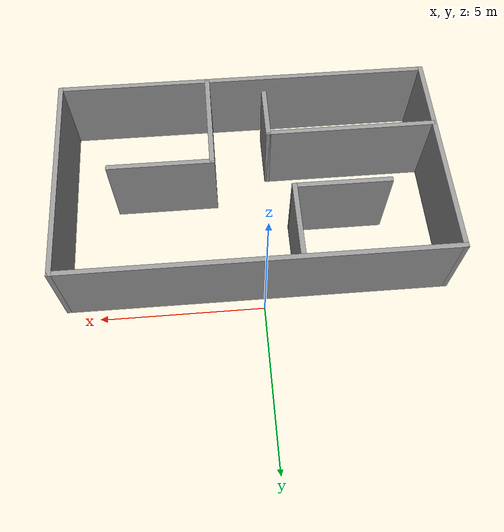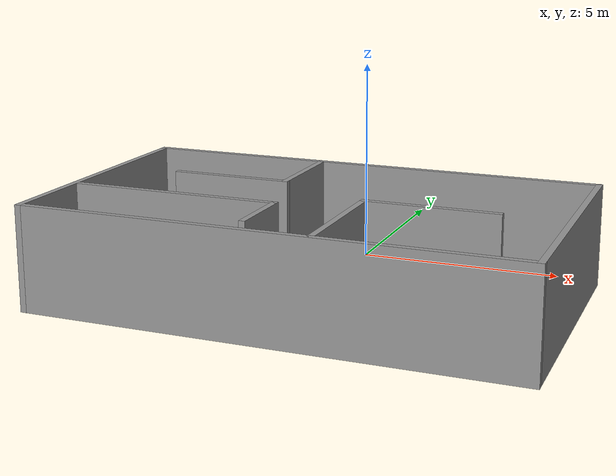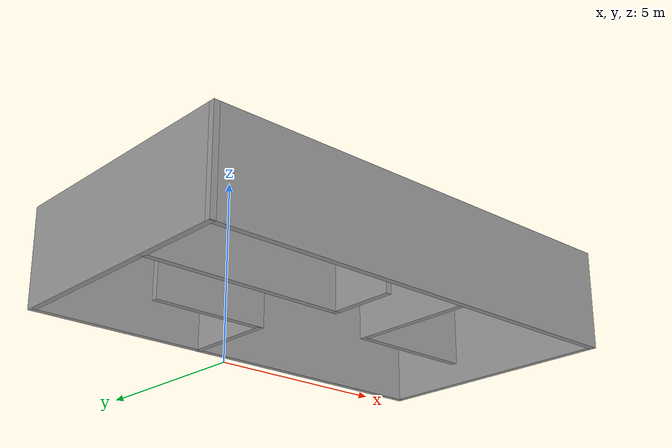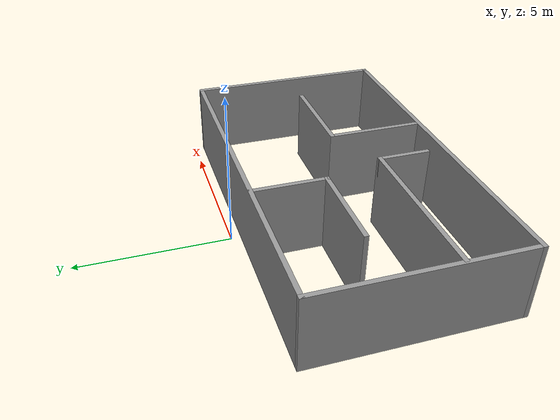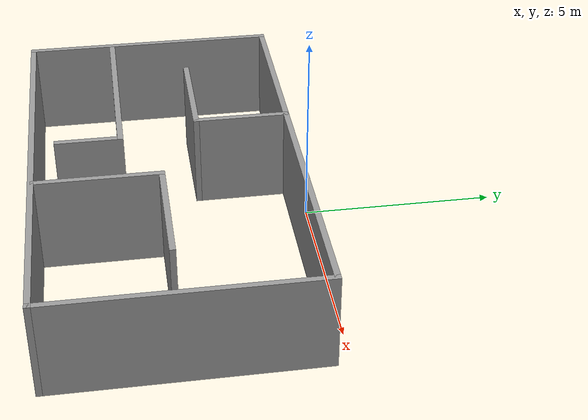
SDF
<?xml version='1.0'?>
<sdf version='1.7'>
  <model name='room'>
    <pose>0.15754 -3.53277 0 0 -0 0</pose>
    <link name='Wall_11'>
      <collision name='Wall_11_Collision'>
        <geometry>
          <box>
            <size>2.5 0.15 2.5</size>
          </box>
        </geometry>
        <pose>0 0 1.25 0 -0 0</pose>
      </collision>
      <visual name='Wall_11_Visual'>
        <pose>0 0 1.25 0 -0 0</pose>
        <geometry>
          <box>
            <size>2.5 0.15 2.5</size>
          </box>
        </geometry>
        <material>
          <script>
            <uri>file://media/materials/scripts/gazebo.material</uri>
            <name>Gazebo/Grey</name>
          </script>
          <ambient>1 1 1 1</ambient>
        </material>
        <meta>
          <layer>0</layer>
        </meta>
      </visual>
      <pose>-1.23422 1.94712 0 0 -0 -1.5708</pose>
    </link>
    <link name='Wall_12'>
      <collision name='Wall_12_Collision'>
        <geometry>
          <box>
            <size>3 0.15 2.5</size>
          </box>
        </geometry>
        <pose>0 0 1.25 0 -0 0</pose>
      </collision>
      <visual name='Wall_12_Visual'>
        <pose>0 0 1.25 0 -0 0</pose>
        <geometry>
          <box>
            <size>3 0.15 2.5</size>
          </box>
        </geometry>
        <material>
          <script>
            <uri>file://media/materials/scripts/gazebo.material</uri>
            <name>Gazebo/Grey</name>
          </script>
          <ambient>1 1 1 1</ambient>
        </material>
        <meta>
          <layer>0</layer>
        </meta>
      </visual>
      <pose>-2.65922 0.772121 0 0 -0 3.14159</pose>
    </link>
    <link name='Wall_14'>
      <collision name='Wall_14_Collision'>
        <geometry>
          <box>
            <size>5.25 0.15 2.5</size>
          </box>
        </geometry>
        <pose>0 0 1.25 0 -0 0</pose>
      </collision>
      <visual name='Wall_14_Visual'>
        <pose>0 0 1.25 0 -0 0</pose>
        <geometry>
          <box>
            <size>5.25 0.15 2.5</size>
          </box>
        </geometry>
        <material>
          <script>
            <uri>file://media/materials/scripts/gazebo.material</uri>
            <name>Gazebo/Grey</name>
          </script>
          <ambient>1 1 1 1</ambient>
        </material>
        <meta>
          <layer>0</layer>
        </meta>
      </visual>
      <pose>-3.18966 -1.22241 0 0 -0 0</pose>
    </link>
    <link name='Wall_15'>
      <collision name='Wall_15_Collision'>
        <geometry>
          <box>
            <size>1.75 0.15 2.5</size>
          </box>
        </geometry>
        <pose>0 0 1.25 0 -0 0</pose>
      </collision>
      <visual name='Wall_15_Visual'>
        <pose>0 0 1.25 0 -0 0</pose>
        <geometry>
          <box>
            <size>1.75 0.15 2.5</size>
          </box>
        </geometry>
        <material>
          <script>
            <uri>file://media/materials/scripts/gazebo.material</uri>
            <name>Gazebo/Grey</name>
          </script>
          <ambient>1 1 1 1</ambient>
        </material>
        <meta>
          <layer>0</layer>
        </meta>
      </visual>
      <pose>-0.639659 -2.02241 0 0 -0 -1.5708</pose>
    </link>
    <link name='Wall_18'>
      <collision name='Wall_18_Collision'>
        <geometry>
          <box>
            <size>3.25 0.15 2.5</size>
          </box>
        </geometry>
        <pose>0 0 1.25 0 -0 0</pose>
      </collision>
      <visual name='Wall_18_Visual'>
        <pose>0 0 1.25 0 -0 0</pose>
        <geometry>
          <box>
            <size>3.25 0.15 2.5</size>
          </box>
        </geometry>
        <material>
          <script>
            <uri>file://media/materials/scripts/gazebo.material</uri>
            <name>Gazebo/Grey</name>
          </script>
          <ambient>1 1 1 1</ambient>
        </material>
        <meta>
          <layer>0</layer>
        </meta>
      </visual>
      <pose>1.13918 -1.84468 0 0 -0 1.5708</pose>
    </link>
    <link name='Wall_19'>
      <collision name='Wall_19_Collision'>
        <geometry>
          <box>
            <size>3.25 0.15 2.5</size>
          </box>
        </geometry>
        <pose>0 0 1.25 0 -0 0</pose>
      </collision>
      <visual name='Wall_19_Visual'>
        <pose>0 0 1.25 0 -0 0</pose>
        <geometry>
          <box>
            <size>3.25 0.15 2.5</size>
          </box>
        </geometry>
        <material>
          <script>
            <uri>file://media/materials/scripts/gazebo.material</uri>
            <name>Gazebo/Grey</name>
          </script>
          <ambient>1 1 1 1</ambient>
        </material>
        <meta>
          <layer>0</layer>
        </meta>
      </visual>
      <pose>2.68918 -0.294676 0 0 -0 0</pose>
    </link>
    <link name='Wall_6'>
      <collision name='Wall_6_Collision'>
        <geometry>
          <box>
            <size>11.75 0.15 2.5</size>
          </box>
        </geometry>
        <pose>0 0 1.25 0 -0 0</pose>
      </collision>
      <visual name='Wall_6_Visual'>
        <pose>0 0 1.25 0 -0 0</pose>
        <geometry>
          <box>
            <size>11.75 0.15 2.5</size>
          </box>
        </geometry>
        <material>
          <script>
            <uri>file://media/materials/scripts/gazebo.material</uri>
            <name>Gazebo/Grey</name>
          </script>
          <ambient>1 1 1 1</ambient>
        </material>
        <meta>
          <layer>0</layer>
        </meta>
      </visual>
      <pose>-0 3.14223 0 0 -0 0</pose>
    </link>
    <link name='Wall_7'>
      <collision name='Wall_7_Collision'>
        <geometry>
          <box>
            <size>6.75 0.15 2.5</size>
          </box>
        </geometry>
        <pose>0 0 1.25 0 -0 0</pose>
      </collision>
      <visual name='Wall_7_Visual'>
        <pose>0 0 1.25 0 -0 0</pose>
        <geometry>
          <box>
            <size>6.75 0.15 2.5</size>
          </box>
        </geometry>
        <material>
          <script>
            <uri>file://media/materials/scripts/gazebo.material</uri>
            <name>Gazebo/Grey</name>
          </script>
          <ambient>1 1 1 1</ambient>
        </material>
        <meta>
          <layer>0</layer>
        </meta>
      </visual>
      <pose>5.8 -0.157765 0 0 -0 -1.5708</pose>
    </link>
    <link name='Wall_8'>
      <collision name='Wall_8_Collision'>
        <geometry>
          <box>
            <size>11.75 0.15 2.5</size>
          </box>
        </geometry>
        <pose>0 0 1.25 0 -0 0</pose>
      </collision>
      <visual name='Wall_8_Visual'>
        <pose>0 0 1.25 0 -0 0</pose>
        <geometry>
          <box>
            <size>11.75 0.15 2.5</size>
          </box>
        </geometry>
        <material>
          <script>
            <uri>file://media/materials/scripts/gazebo.material</uri>
            <name>Gazebo/Grey</name>
          </script>
          <ambient>1 1 1 1</ambient>
        </material>
        <meta>
          <layer>0</layer>
        </meta>
      </visual>
      <pose>-0 -3.45777 0 0 -0 3.14159</pose>
    </link>
    <link name='Wall_9'>
      <collision name='Wall_9_Collision'>
        <geometry>
          <box>
            <size>6.75 0.15 2.5</size>
          </box>
        </geometry>
        <pose>0 0 1.25 0 -0 0</pose>
      </collision>
      <visual name='Wall_9_Visual'>
        <pose>0 0 1.25 0 -0 0</pose>
        <geometry>
          <box>
            <size>6.75 0.15 2.5</size>
          </box>
        </geometry>
        <material>
          <script>
            <uri>file://media/materials/scripts/gazebo.material</uri>
            <name>Gazebo/Grey</name>
          </script>
          <ambient>1 1 1 1</ambient>
        </material>
        <meta>
          <layer>0</layer>
        </meta>
      </visual>
      <pose>-5.8 -0.157765 0 0 -0 1.5708</pose>
    </link>
    <static>1</static>
  </model>
</sdf>
